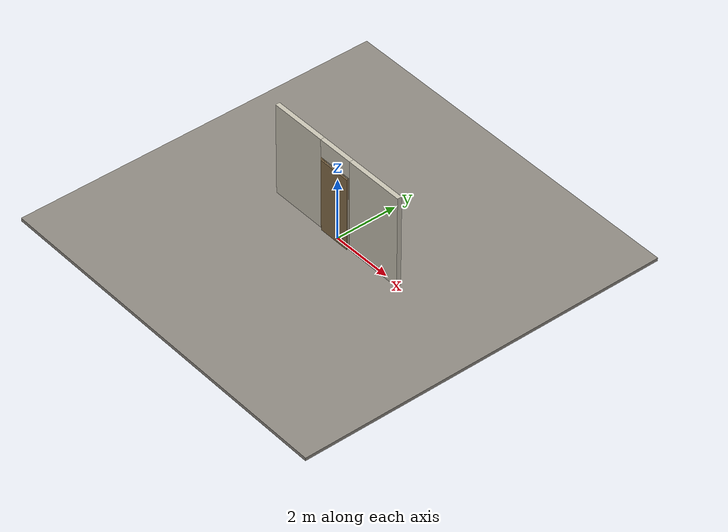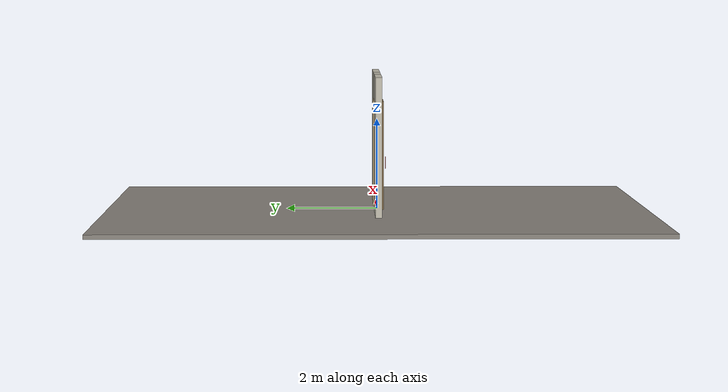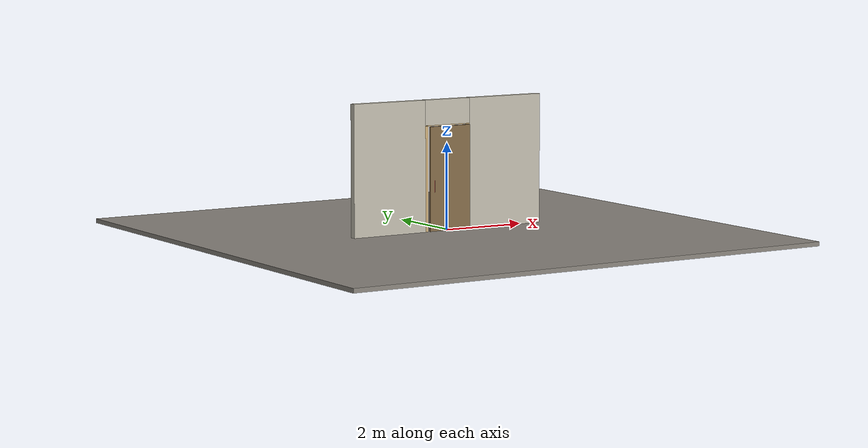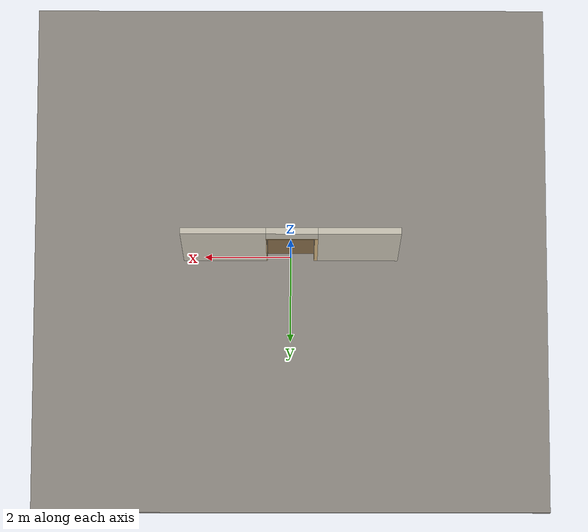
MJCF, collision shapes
<?xml version="1.0" ?>
<mujoco model="db0398_sliding_single_minimal">
  <compiler angle="radian" meshdir="../../hardware" texturedir="../../textures" autolimits="true" inertiafromgeom="false"/>
  <option timestep="0.002" integrator="implicitfast" cone="elliptic" impratio="10" noslip_iterations="3">
    <flag multiccd="enable"/>
  </option>
  <size memory="16M"/>
  <default>
    <geom condim="4" solref="0.005 1" solimp="0.95 0.99 0.001"/>
    <joint solreflimit="0.005 1" solimplimit="0.95 0.99 0.001"/>
    <tendon solreflimit="0.005 1"/>
    <equality solref="0.002 1"/>
  </default>
  <visual>
    <headlight ambient="0.4 0.4 0.4" diffuse="0.7 0.7 0.7" specular="0.2 0.2 0.2"/>
    <quality shadowsize="4096"/>
    <map znear="0.01" zfar="60"/>
  </visual>
  <asset>
    <mesh name="pull_2b47e55ff8" file="pull_2b47e55ff8.obj"/>
    <material name="mat_floor" rgba="0.55 0.53 0.5 1" specular="0.2" shininess="0.15" reflectance="0"/>
    <material name="mat_wall" rgba="0.78 0.76 0.7 1" specular="0.2" shininess="0.1" reflectance="0"/>
    <material name="mat_frame" rgba="0.82 0.7 0.5 1" specular="0.2" shininess="0.45" reflectance="0"/>
    <material name="mat_track" rgba="0.05 0.05 0.05 1" specular="0.38" shininess="0.3" reflectance="0.12"/>
    <material name="mat_leaf" rgba="0.524 0.425 0.287 1" specular="0.2" shininess="0.45" reflectance="0"/>
    <material name="mat_leaf_brace" rgba="0.471 0.382 0.259 1" specular="0.2" shininess="0.2" reflectance="0"/>
    <material name="mat_roller" rgba="0.65 0.66 0.68 1" specular="0.74" shininess="0.5" reflectance="0.36"/>
    <material name="mat_op_black_matte_metal" rgba="0.05 0.05 0.05 1" specular="0.38" shininess="0.3" reflectance="0.12"/>
    <material name="mat_teardrop" rgba="0.05 0.05 0.05 1" specular="0.38" shininess="0.3" reflectance="0.12"/>
    <material name="mat_hook" rgba="0.75 0.76 0.77 1" specular="0.8" shininess="0.65" reflectance="0.4"/>
    <texture name="skybox" type="skybox" builtin="gradient" rgb1="0.6 0.7 0.85" rgb2="0.9 0.92 0.95" width="256" height="256"/>
  </asset>
  <worldbody>
    <light name="sun" pos="1.5 -2.5 4" dir="-0.3 0.5 -0.8" directional="true" diffuse="0.8 0.8 0.8" specular="0.3 0.3 0.3" castshadow="true"/>
    <light name="fill" pos="-1.5 2.5 3" dir="0.3 -0.5 -0.7" directional="true" diffuse="0.35 0.35 0.4" castshadow="false"/>
    <camera name="robot_view" pos="0 -2.89375 2.02025" xyaxes="1 0 0 0 0.26963 0.962964" fovy="52"/>
    <camera name="far_view" pos="0 2.89375 2.02025" xyaxes="-1 0 0 0 -0.26963 0.962964" fovy="52"/>
    <camera name="iso" pos="2.19925 -2.43075 2.48325" xyaxes="0.741536 0.670913 0 -0.242917 0.268487 0.932151" fovy="46"/>
    <camera name="detail_handle" pos="-0.2635 -0.9815 1.33" xyaxes="0.97561 0.219512 0 -0.070934 0.315262 0.94635" fovy="38"/>
    <geom name="floor" type="box" size="6 6 0.05" pos="0 0 -0.05" material="mat_floor" group="0" contype="1" conaffinity="1" friction="0.8 0.005 0.0001" density="2400"/>
    <geom name="wall_left" type="box" size="0.93875 0.0725 1.51" pos="-1.56125 0 1.51" material="mat_wall" group="0" contype="1" conaffinity="1" friction="0.6 0.005 0.0001" density="800"/>
    <geom name="wall_right" type="box" size="0.96875 0.0725 1.51" pos="1.53125 0 1.51" material="mat_wall" group="0" contype="1" conaffinity="1" friction="0.6 0.005 0.0001" density="800"/>
    <geom name="wall_header" type="box" size="0.5925 0.0725 0.2905" pos="-0.03 0 2.7295" material="mat_wall" group="0" contype="1" conaffinity="1" friction="0.6 0.005 0.0001" density="800"/>
    <geom name="jamb_r" type="box" size="0.0095 0.0725 1.21" pos="0.553 0 1.21" material="mat_frame" group="0" contype="1" conaffinity="1" friction="0.6 0.005 0.0001" density="300"/>
    <geom name="jamb_head" type="box" size="0.5625 0.0725 0.0095" pos="0 0 2.4295" material="mat_frame" group="0" contype="1" conaffinity="1" friction="0.6 0.005 0.0001" density="300"/>
    <geom name="jamb_latch_0" type="box" size="0.0395 0.0725 1.21" pos="-0.583 0 1.21" material="mat_frame" group="0" contype="1" conaffinity="1" friction="0.6 0.005 0.0001" density="300"/>
    <site name="approach_point" pos="0 -1.5 0" quat="1 0 0 0" size="0.05" rgba="0.2 0.9 0.2 0.5" group="4"/>
    <site name="goal_point" pos="0 1.5 0" quat="1 0 0 0" size="0.05" rgba="0.2 0.9 0.2 0.5" group="4"/>
    <site name="door_plane_center" pos="0 0 1.21" quat="1 0 0 0" size="0.02" rgba="0.2 0.9 0.2 0.5" group="4"/>
    <body name="leaf" pos="0 -0.1145 0">
      <inertial pos="-0.00481 -0.000641 1.210243" mass="45.967643" quat="0.500279 0.498703 0.501188 -0.499827" diaginertia="4.419942797 21.85255449 26.254277815"/>
      <joint name="leaf_slide" type="slide" axis="1 0 0" limited="true" range="0 1.067" damping="4.304504" frictionloss="18.079571" armature="0.5"/>
      <geom name="leaf_slab" type="box" size="0.5335 0.022 1.2" pos="0 0 1.212" material="mat_leaf" group="0" contype="1" conaffinity="1" friction="0.35 0.005 0.0001" density="1"/>
      <geom name="leaf_pull_n" type="mesh" mesh="pull_2b47e55ff8" pos="-0.4435 -0.022 1.05" quat="0 0 -0.707107 0.707107" material="mat_op_black_matte_metal" group="1" contype="0" conaffinity="0" density="3000"/>
      <geom name="leaf_pull_col_n" type="capsule" size="0.006 0.13" pos="-0.4435 -0.067 1.05" material="mat_op_black_matte_metal" group="3" contype="1" conaffinity="1" rgba="0.8 0.3 0.3 0.25" friction="0.7 0.01 0.0001" density="3000"/>
      <site name="leaf_pull_grip_n" pos="-0.4435 -0.067 1.05" quat="1 0 0 0" size="0.012" rgba="0.2 0.9 0.2 0.5" group="4"/>
      <site name="leaf_edge_mid" pos="-0.5335 0 1.212" quat="1 0 0 0" size="0.02" rgba="0.2 0.9 0.2 0.5" group="4"/>
    </body>
  </worldbody>
  <sensor>
    <jointpos name="leaf_slide_pos" joint="leaf_slide"/>
    <jointvel name="leaf_slide_vel" joint="leaf_slide"/>
  </sensor>
</mujoco>
